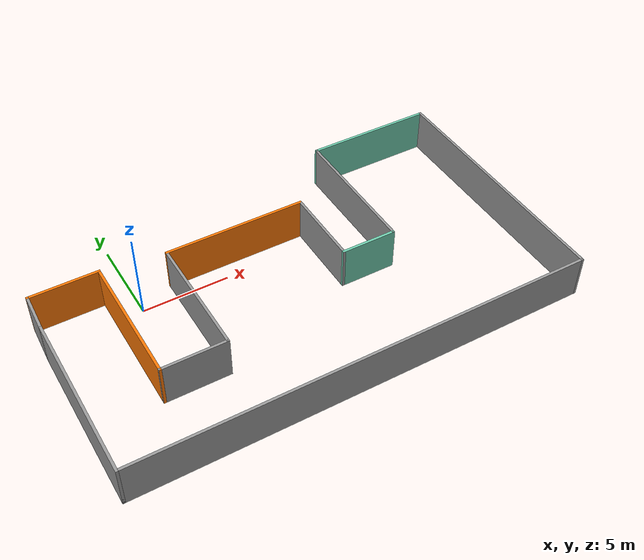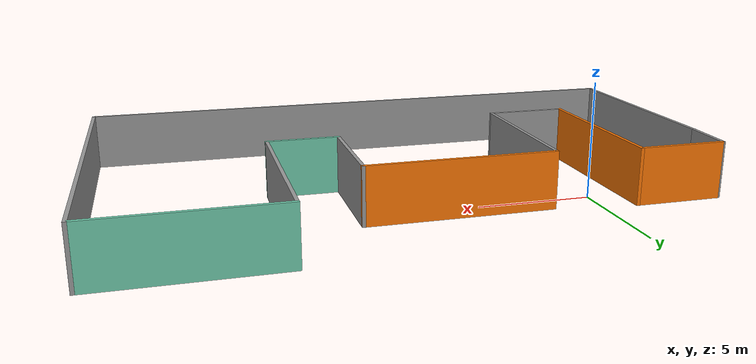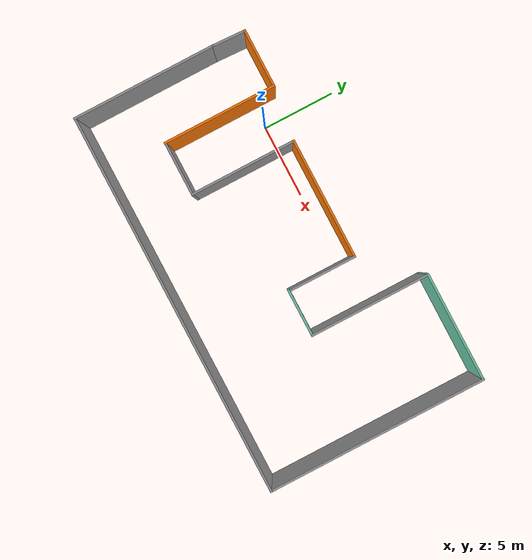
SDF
<?xml version='1.0'?>
<sdf version='1.6'>
  <model name='building3'>
    <pose frame=''>7.56837 -2.945 0 0 -0 0</pose>
    <link name='Wall_0'>
      <collision name='Wall_0_Collision'>
        <geometry>
          <box>
            <size>9.75 0.15 2.5</size>
          </box>
        </geometry>
        <pose frame=''>0 0 1.25 0 -0 0</pose>
      </collision>
      <visual name='Wall_0_Visual'>
        <pose frame=''>0 0 1.25 0 -0 0</pose>
        <geometry>
          <box>
            <size>9.75 0.15 2.5</size>
          </box>
        </geometry>
        <material>
          <script>
            <uri>file://media/materials/scripts/gazebo.material</uri>
            <name>Gazebo/Grey</name>
          </script>
          <ambient>1 1 1 1</ambient>
        </material>
        <meta>
          <layer>0</layer>
        </meta>
      </visual>
      <pose frame=''>-13.0484 -2.625 0 0 0 -1.5708</pose>
    </link>
    <link name='Wall_1'>
      <collision name='Wall_1_Collision'>
        <geometry>
          <box>
            <size>26.25 0.15 2.5</size>
          </box>
        </geometry>
        <pose frame=''>0 0 1.25 0 -0 0</pose>
      </collision>
      <visual name='Wall_1_Visual'>
        <pose frame=''>0 0 1.25 0 -0 0</pose>
        <geometry>
          <box>
            <size>26.25 0.15 2.5</size>
          </box>
        </geometry>
        <material>
          <script>
            <uri>file://media/materials/scripts/gazebo.material</uri>
            <name>Gazebo/Grey</name>
          </script>
          <ambient>1 1 1 1</ambient>
        </material>
        <meta>
          <layer>0</layer>
        </meta>
      </visual>
      <pose frame=''>0.001627 -7.425 0 0 -0 0</pose>
    </link>
    <link name='Wall_10'>
      <collision name='Wall_10_Collision'>
        <geometry>
          <box>
            <size>7.75 0.15 2.5</size>
          </box>
        </geometry>
        <pose frame=''>0 0 1.25 0 -0 0</pose>
      </collision>
      <visual name='Wall_10_Visual'>
        <pose frame=''>0 0 1.25 0 -0 0</pose>
        <geometry>
          <box>
            <size>7.75 0.15 2.5</size>
          </box>
        </geometry>
        <material>
          <script>
            <uri>file://media/materials/scripts/gazebo.material</uri>
            <name>Gazebo/Grey</name>
          </script>
          <ambient>0.996078 0.47451 0.0196078 1</ambient>
        </material>
        <meta>
          <layer>0</layer>
        </meta>
      </visual>
      <pose frame=''>-9.09837 0.625 0 0 -0 1.5708</pose>
    </link>
    <link name='Wall_11'>
      <collision name='Wall_11_Collision'>
        <geometry>
          <box>
            <size>4 0.15 2.5</size>
          </box>
        </geometry>
        <pose frame=''>0 0 1.25 0 -0 0</pose>
      </collision>
      <visual name='Wall_11_Visual'>
        <pose frame=''>0 0 1.25 0 -0 0</pose>
        <geometry>
          <box>
            <size>4 0.15 2.5</size>
          </box>
        </geometry>
        <material>
          <script>
            <uri>file://media/materials/scripts/gazebo.material</uri>
            <name>Gazebo/Grey</name>
          </script>
          <ambient>0.996078 0.47451 0.0196078 1</ambient>
        </material>
        <meta>
          <layer>0</layer>
        </meta>
      </visual>
      <pose frame=''>-11.0234 4.425 0 0 -0 3.14159</pose>
    </link>
    <link name='Wall_12'>
      <collision name='Wall_12_Collision'>
        <geometry>
          <box>
            <size>2.40222 0.15 2.5</size>
          </box>
        </geometry>
        <pose frame=''>0 0 1.25 0 -0 0</pose>
      </collision>
      <visual name='Wall_12_Visual'>
        <pose frame=''>0 0 1.25 0 -0 0</pose>
        <geometry>
          <box>
            <size>2.40222 0.15 2.5</size>
          </box>
        </geometry>
        <material>
          <script>
            <uri>file://media/materials/scripts/gazebo.material</uri>
            <name>Gazebo/Grey</name>
          </script>
          <ambient>1 1 1 1</ambient>
        </material>
        <meta>
          <layer>0</layer>
        </meta>
      </visual>
      <pose frame=''>-12.9984 3.3 0 0 0 -1.61521</pose>
    </link>
    <link name='Wall_2'>
      <collision name='Wall_2_Collision'>
        <geometry>
          <box>
            <size>15 0.15 2.5</size>
          </box>
        </geometry>
        <pose frame=''>0 0 1.25 0 -0 0</pose>
      </collision>
      <visual name='Wall_2_Visual'>
        <pose frame=''>0 0 1.25 0 -0 0</pose>
        <geometry>
          <box>
            <size>15 0.15 2.5</size>
          </box>
        </geometry>
        <material>
          <script>
            <uri>file://media/materials/scripts/gazebo.material</uri>
            <name>Gazebo/Grey</name>
          </script>
          <ambient>1 1 1 1</ambient>
        </material>
        <meta>
          <layer>0</layer>
        </meta>
      </visual>
      <pose frame=''>13.0516 0 0 0 -0 1.5708</pose>
    </link>
    <link name='Wall_3'>
      <collision name='Wall_3_Collision'>
        <geometry>
          <box>
            <size>7.5 0.15 2.5</size>
          </box>
        </geometry>
        <pose frame=''>0 0 1.25 0 -0 0</pose>
      </collision>
      <visual name='Wall_3_Visual'>
        <pose frame=''>0 0 1.25 0 -0 0</pose>
        <geometry>
          <box>
            <size>7.5 0.15 2.5</size>
          </box>
        </geometry>
        <material>
          <script>
            <uri>file://media/materials/scripts/gazebo.material</uri>
            <name>Gazebo/Grey</name>
          </script>
          <ambient>0.435294 0.796078 0.67451 1</ambient>
        </material>
        <meta>
          <layer>0</layer>
        </meta>
      </visual>
      <pose frame=''>9.37663 7.425 0 0 -0 3.14159</pose>
    </link>
    <link name='Wall_4'>
      <collision name='Wall_4_Collision'>
        <geometry>
          <box>
            <size>8.25 0.15 2.5</size>
          </box>
        </geometry>
        <pose frame=''>0 0 1.25 0 -0 0</pose>
      </collision>
      <visual name='Wall_4_Visual'>
        <pose frame=''>0 0 1.25 0 -0 0</pose>
        <geometry>
          <box>
            <size>8.25 0.15 2.5</size>
          </box>
        </geometry>
        <material>
          <script>
            <uri>file://media/materials/scripts/gazebo.material</uri>
            <name>Gazebo/Grey</name>
          </script>
          <ambient>1 1 1 1</ambient>
        </material>
        <meta>
          <layer>0</layer>
        </meta>
      </visual>
      <pose frame=''>5.70163 3.375 0 0 0 -1.5708</pose>
    </link>
    <link name='Wall_5'>
      <collision name='Wall_5_Collision'>
        <geometry>
          <box>
            <size>3.25 0.15 2.5</size>
          </box>
        </geometry>
        <pose frame=''>0 0 1.25 0 -0 0</pose>
      </collision>
      <visual name='Wall_5_Visual'>
        <pose frame=''>0 0 1.25 0 -0 0</pose>
        <geometry>
          <box>
            <size>3.25 0.15 2.5</size>
          </box>
        </geometry>
        <material>
          <script>
            <uri>file://media/materials/scripts/gazebo.material</uri>
            <name>Gazebo/Grey</name>
          </script>
          <ambient>0.435294 0.796078 0.67451 1</ambient>
        </material>
        <meta>
          <layer>0</layer>
        </meta>
      </visual>
      <pose frame=''>4.15163 -0.675 0 0 -0 3.14159</pose>
    </link>
    <link name='Wall_6'>
      <collision name='Wall_6_Collision'>
        <geometry>
          <box>
            <size>4.75 0.15 2.5</size>
          </box>
        </geometry>
        <pose frame=''>0 0 1.25 0 -0 0</pose>
      </collision>
      <visual name='Wall_6_Visual'>
        <pose frame=''>0 0 1.25 0 -0 0</pose>
        <geometry>
          <box>
            <size>4.75 0.15 2.5</size>
          </box>
        </geometry>
        <material>
          <script>
            <uri>file://media/materials/scripts/gazebo.material</uri>
            <name>Gazebo/Grey</name>
          </script>
          <ambient>1 1 1 1</ambient>
        </material>
        <meta>
          <layer>0</layer>
        </meta>
      </visual>
      <pose frame=''>2.60163 1.625 0 0 -0 1.5708</pose>
    </link>
    <link name='Wall_7'>
      <collision name='Wall_7_Collision'>
        <geometry>
          <box>
            <size>8.25 0.15 2.5</size>
          </box>
        </geometry>
        <pose frame=''>0 0 1.25 0 -0 0</pose>
      </collision>
      <visual name='Wall_7_Visual'>
        <pose frame=''>0 0 1.25 0 -0 0</pose>
        <geometry>
          <box>
            <size>8.25 0.15 2.5</size>
          </box>
        </geometry>
        <material>
          <script>
            <uri>file://media/materials/scripts/gazebo.material</uri>
            <name>Gazebo/Grey</name>
          </script>
          <ambient>0.996078 0.47451 0.0196078 1</ambient>
        </material>
        <meta>
          <layer>0</layer>
        </meta>
      </visual>
      <pose frame=''>-1.44837 3.925 0 0 -0 3.14159</pose>
    </link>
    <link name='Wall_8'>
      <collision name='Wall_8_Collision'>
        <geometry>
          <box>
            <size>7.25 0.15 2.5</size>
          </box>
        </geometry>
        <pose frame=''>0 0 1.25 0 -0 0</pose>
      </collision>
      <visual name='Wall_8_Visual'>
        <pose frame=''>0 0 1.25 0 -0 0</pose>
        <geometry>
          <box>
            <size>7.25 0.15 2.5</size>
          </box>
        </geometry>
        <material>
          <script>
            <uri>file://media/materials/scripts/gazebo.material</uri>
            <name>Gazebo/Grey</name>
          </script>
          <ambient>1 1 1 1</ambient>
        </material>
        <meta>
          <layer>0</layer>
        </meta>
      </visual>
      <pose frame=''>-5.49837 0.375 0 0 0 -1.5708</pose>
    </link>
    <link name='Wall_9'>
      <collision name='Wall_9_Collision'>
        <geometry>
          <box>
            <size>3.75 0.15 2.5</size>
          </box>
        </geometry>
        <pose frame=''>0 0 1.25 0 -0 0</pose>
      </collision>
      <visual name='Wall_9_Visual'>
        <pose frame=''>0 0 1.25 0 -0 0</pose>
        <geometry>
          <box>
            <size>3.75 0.15 2.5</size>
          </box>
        </geometry>
        <material>
          <script>
            <uri>file://media/materials/scripts/gazebo.material</uri>
            <name>Gazebo/Grey</name>
          </script>
          <ambient>1 1 1 1</ambient>
        </material>
        <meta>
          <layer>0</layer>
        </meta>
      </visual>
      <pose frame=''>-7.29837 -3.175 0 0 -0 3.14159</pose>
    </link>
    <static>1</static>
  </model>
</sdf>
